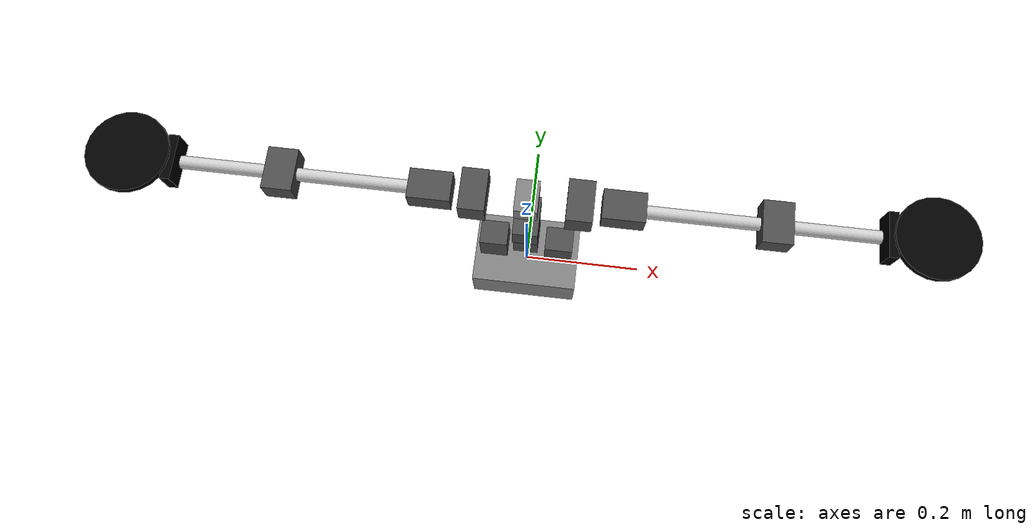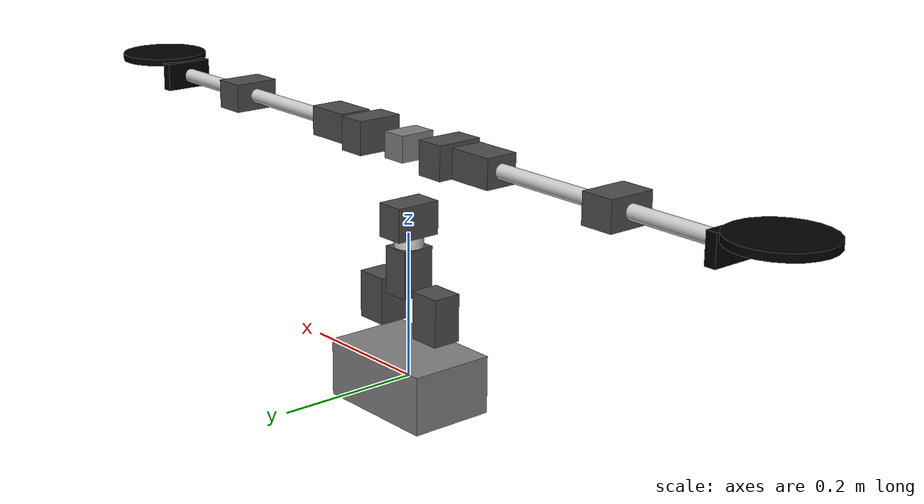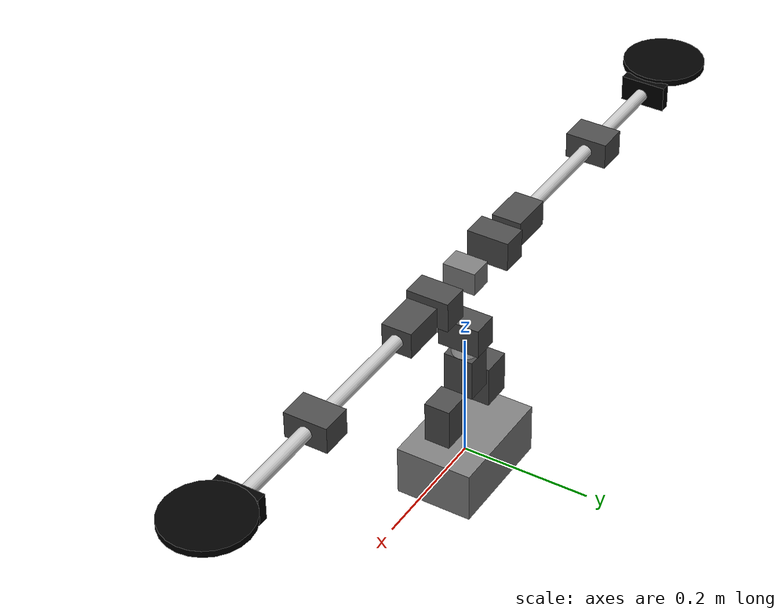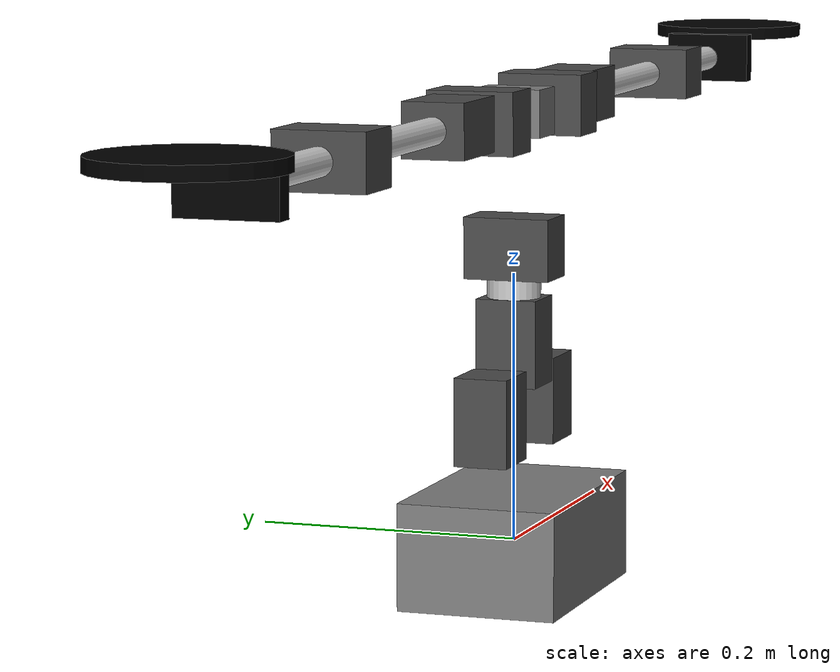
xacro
<?xml version="1.0" ?>
<robot xmlns:xacro="http://ros.org/wiki/xacro" name="tflow">

    <xacro:property name="dynamixel_mx28_x" value="0.0356"/>
    <xacro:property name="dynamixel_mx28_y" value="0.0355"/>
    <xacro:property name="dynamixel_mx28_z" value="0.0506"/>
    <xacro:property name="dynamixel_mx28_weight" value="0.072"/>

    <xacro:property name="dynamixel_mx64_x" value="0.0402"/>
    <xacro:property name="dynamixel_mx64_y" value="0.041"/>
    <xacro:property name="dynamixel_mx64_z" value="0.0611"/>
    <xacro:property name="dynamixel_mx64_weight" value="0.126"/>

    <xacro:property name="dynamixel_mx106_x" value="0.0402"/>
    <xacro:property name="dynamixel_mx106_y" value="0.046"/>
    <xacro:property name="dynamixel_mx106_z" value="0.0651"/>
    <xacro:property name="dynamixel_mx106_weight" value="0.153"/>

    <xacro:macro name="dynamixelmx28" params="roll pitch yaw x y z">
        <visual>
            <geometry>
                <box size="${dynamixel_mx28_x} ${dynamixel_mx28_y} ${dynamixel_mx28_z}"/>
            </geometry>
            <origin rpy="${roll} ${pitch} ${yaw}" xyz="${x} ${y} ${z}"/>
            <material name="silver">
                <color rgba="0.5 0.5 0.5 1"/>
            </material>
        </visual>
        <collision>
          <geometry>
            <box size="${dynamixel_mx28_x} ${dynamixel_mx28_y} ${dynamixel_mx28_z}"/>
          </geometry>
          <origin rpy="${roll} ${pitch} ${yaw}" xyz="${x} ${y} ${z}"/>
        </collision>
        <inertial>
            <mass value="${dynamixel_mx28_weight}"/>
            <inertia ixx="0.0" ixy="0.0" ixz="0.0" iyy="0.0" iyz="0.0" izz="0.0"/>
        </inertial>
    </xacro:macro>

    <xacro:macro name="dynamixelmx64" params="roll pitch yaw x y z">
        <visual>
            <geometry>
                <box size="${dynamixel_mx64_x} ${dynamixel_mx64_y} ${dynamixel_mx64_z}"/>
            </geometry>
            <origin rpy="${roll} ${pitch} ${yaw}" xyz="${x} ${y} ${z}"/>
            <material name="silver">
                <color rgba="0.5 0.5 0.5 1"/>
            </material>
        </visual>
        <collision>
          <geometry>
            <box size="${dynamixel_mx64_x} ${dynamixel_mx64_y} ${dynamixel_mx64_z}"/>
          </geometry>
          <origin rpy="${roll} ${pitch} ${yaw}" xyz="${x} ${y} ${z}"/>
        </collision>
        <inertial>
            <mass value="${dynamixel_mx64_weight}"/>
            <inertia ixx="0.0" ixy="0.0" ixz="0.0" iyy="0.0" iyz="0.0" izz="0.0"/>
        </inertial>
    </xacro:macro>

    <xacro:macro name="dynamixelmx106" params="roll pitch yaw x y z">
        <visual>
            <geometry>
                <box size="${dynamixel_mx106_x} ${dynamixel_mx106_y} ${dynamixel_mx106_z}"/>
            </geometry>
            <origin rpy="${roll} ${pitch} ${yaw}" xyz="${x} ${y} ${z}"/>
            <material name="silver">
                <color rgba="0.3 0.3 0.3 1"/>
            </material>
        </visual>
        <collision>
          <geometry>
            <box size="${dynamixel_mx106_x} ${dynamixel_mx106_y} ${dynamixel_mx106_z}"/>
          </geometry>
          <origin rpy="${roll} ${pitch} ${yaw}" xyz="${x} ${y} ${z}"/>
        </collision>
        <inertial>
            <mass value="${dynamixel_mx106_weight}"/>
            <inertia ixx="0.0" ixy="0.0" ixz="0.0" iyy="0.0" iyz="0.0" izz="0.0"/>
        </inertial>
    </xacro:macro>

    <xacro:macro name="link_cylinder" params="le r roll pitch yaw x y z">
        <visual>
            <geometry>
                <cylinder length="${le}" radius="${r}"/>
            </geometry>
            <origin rpy="${roll} ${pitch} ${yaw}" xyz="${x} ${y} ${z}"/>
            <material name="white">
                <color rgba="0.8 0.8 0.8 1"/>
            </material>
        </visual>
        <collision>
          <geometry>
            <cylinder length="${le}" radius="${r}"/>
          </geometry>
          <origin rpy="${roll} ${pitch} ${yaw}" xyz="${x} ${y} ${z}"/>
        </collision>
        <inertial>
            <mass value="${le*r}"/>
            <inertia ixx="0.0" ixy="0.0" ixz="0.0" iyy="0.0" iyz="0.0" izz="0.0"/>
        </inertial>
    </xacro:macro>

    <xacro:macro name="link_box" params="bx by bz roll pitch yaw x y z">
        <visual>
            <geometry>
                <box size="${bx} ${by} ${bz}"/>
            </geometry>
            <origin rpy="${roll} ${pitch} ${yaw}" xyz="${x} ${y} ${z}"/>
            <material name="black">
                <color rgba="0 0 0 1"/>
            </material>
        </visual>
        <collision>
          <geometry>
            <box size="${bx} ${by} ${bz}"/>
          </geometry>
          <origin rpy="${roll} ${pitch} ${yaw}" xyz="${x} ${y} ${z}"/>
        </collision>
        <inertial>
            <mass value="${bx*by*bz}"/>
            <inertia ixx="0.0" ixy="0.0" ixz="0.0" iyy="0.0" iyz="0.0" izz="0.0"/>
        </inertial>
    </xacro:macro>

    <xacro:macro name="telapak_tangan" params="le r roll pitch yaw x y z">
        <visual>
            <geometry>
                <cylinder length="${le}" radius="${r}"/>
            </geometry>
            <origin rpy="${roll} ${pitch} ${yaw}" xyz="${x} ${y} ${z}"/>
            <material name="black">
                <color rgba="0 0 0 1"/>
            </material>
        </visual>
        <collision>
          <geometry>
            <cylinder length="${le}" radius="${r}"/>
          </geometry>
          <origin rpy="${roll} ${pitch} ${yaw}" xyz="${x} ${y} ${z}"/>
        </collision>
        <inertial>
            <mass value="${le*r}"/>
            <inertia ixx="0.0" ixy="0.0" ixz="0.0" iyy="0.0" iyz="0.0" izz="0.0"/>
        </inertial>
    </xacro:macro>

    <link name="base_link">
        <visual>
            <geometry>
                <box size="0.18 0.12 0.08"/>
            </geometry>
            <origin rpy="0 0 0" xyz="0 0 0"/>
            <material name="silver">
                <color rgba="0.5 0.5 0.5 1"/>
            </material>
        </visual>
        <collision>
            <geometry>
                <box size="0.18 0.12 0.08"/>
            </geometry>
            <origin rpy="0 0 0" xyz="0 0 0"/>
            <material name="silver">
                <color rgba="0.5 0.5 0.5 1"/>
            </material>
        </collision>
        <inertial>
            <mass value="0.01"/>
            <inertia ixx="0.0" ixy="0.0" ixz="0.0" iyy="0.0" iyz="0.0" izz="0.0"/>
        </inertial>
    </link>

    <!-- PERUT -->
    <link name="servo_perut_roll_1">
        <xacro:dynamixelmx106 roll="0.0" pitch="0.0" yaw = "1.57" x="0" y="0" z="0"/>
    </link>

    <link name="servo_perut_roll_2">
        <xacro:dynamixelmx106 roll="0.0" pitch="0.0" yaw = "-1.57" x="0" y="0" z="0"/>
    </link>

    <link name="servo_perut_pitch">
        <xacro:dynamixelmx106 roll="0.0" pitch="0.0" yaw = "0" x="0" y="0" z="0"/>
    </link>

    <link name="link_perut_yaw">
        <xacro:link_cylinder le="0.04" r="0.02" roll="0.0" pitch="0.0" yaw ="0" x="0" y="0" z="0.03"/>
    </link>

    <link name="servo_perut_yaw">
        <xacro:dynamixelmx106 roll="-1.57" pitch="0.0" yaw = "0" x="0" y="0" z="0.02"/>
    </link>
    <!-- PERUT_END -->

    <!-- Kepala -->
    <link name="servo_kepala_yaw">
        <xacro:dynamixelmx28 roll="1.57" pitch="0.0" yaw = "0" x="0" y="0" z="0.0"/>
    </link>
    <!-- Kepala_END -->

    <!-- Tangan_Kanan -->
    <link name="servo_bahu_kanan_roll">
        <xacro:dynamixelmx106 roll="-1.57" pitch="0" yaw = "0" x="0" y="0" z="0"/>
    </link>

    <link name="servo_bahu_kanan_pitch">
        <xacro:dynamixelmx106 roll="0" pitch="1.57" yaw = "0" x="0" y="0" z="0"/>
    </link>

    <link name="link_siku_kanan">
        <xacro:link_cylinder le="0.195" r="0.01" roll="0.0" pitch="1.57" yaw ="0" x="${0.195/2}" y="0" z="0.0"/>
    </link>

    <link name="servo_siku_kanan_pitch">
        <xacro:dynamixelmx106 roll="0" pitch="1.57" yaw = "1.57" x="0" y="0" z="0"/>
    </link>

    <link name="link_lengan_kanan">
        <xacro:link_cylinder le="0.15" r="0.01" roll="0.0" pitch="1.57" yaw ="0" x="${-(0.16/2)}" y="0" z="0.0"/>
    </link>

    <link name="link_telapak_kanan">
        <xacro:link_box bx="0.015" by="0.07" bz="0.04" roll="0.0" pitch="0" yaw ="0" x="0" y="0" z="0.0"/>
    </link>

    <link name="telapak_tangan_kanan">
        <xacro:telapak_tangan le="0.01" r="${0.125/2}" roll="0.0" pitch="0" yaw ="0" x="0" y="0" z="0.0"/>
    </link>
    <!-- Tangan_Kanan_END -->

    <!-- Tangan_Kiri -->
    <link name="servo_bahu_kiri_roll">
        <xacro:dynamixelmx106 roll="1.57" pitch="0" yaw = "0" x="0" y="0" z="0"/>
    </link>

    <link name="servo_bahu_kiri_pitch">
        <xacro:dynamixelmx106 roll="0" pitch="-1.57" yaw = "0" x="0" y="0" z="0"/>
    </link>

    <link name="link_siku_kiri">
        <xacro:link_cylinder le="0.195" r="0.01" roll="0.0" pitch="-1.57" yaw ="0" x="${-(0.195/2)}" y="0" z="0.0"/>
    </link>

    <link name="servo_siku_kiri_pitch">
        <xacro:dynamixelmx106 roll="0" pitch="1.57" yaw = "1.57" x="0" y="0" z="0"/>
    </link>

    <link name="link_lengan_kiri">
        <xacro:link_cylinder le="0.15" r="0.01" roll="0.0" pitch="-1.57" yaw ="0" x="${(0.16/2)}" y="0" z="0.0"/>
    </link>

    <link name="link_telapak_kiri">
        <xacro:link_box bx="0.015" by="0.07" bz="0.04" roll="0.0" pitch="0" yaw ="0" x="0" y="0" z="0.0"/>
    </link>

    <link name="telapak_tangan_kiri">
        <xacro:telapak_tangan le="0.01" r="${0.125/2}" roll="0.0" pitch="0" yaw ="0" x="0" y="0" z="0.0"/>
    </link>
    <!-- Tangan_Kiri_END -->

    <!-- PERUT -->
    <joint name="joint_perut_roll" type="fixed">
        <parent link="base_link"/>
        <child link="servo_perut_roll_1"/>
        <origin rpy="0 0 0" xyz="0.055 0.0 0.1"/>
        <limit effort="300" velocity="0.1" lower="-1.57" upper="1.57"/>
        <dynamics damping="50" friction="1"/>
        <axis xyz="1 0 0" />
    </joint>

    <joint name="joint_perut_roll_2" type="fixed">
        <parent link="base_link"/>
        <child link="servo_perut_roll_2"/>
        <origin rpy="0 0 0" xyz="-0.055 0.0 0.1"/>
        <limit effort="300" velocity="0.1" lower="-1.57" upper="1.57"/>
        <dynamics damping="50" friction="1"/>
        <axis xyz="1 0 0" />
    </joint>

    <joint name="perut_roll" type="revolute">
        <parent link="servo_perut_roll_1"/>
        <child link="servo_perut_pitch"/>
        <origin rpy="0 0 0" xyz="-0.055 0.0 0.05"/>
        <limit effort="300" velocity="0.1" lower="-1.57" upper="1.57"/>
        <dynamics damping="50" friction="1"/>
        <axis xyz="1 0 0" />
    </joint>

    <joint name="perut_pitch" type="revolute">
        <parent link="servo_perut_pitch"/>
        <child link="link_perut_yaw"/>
        <origin rpy="0 0 0" xyz="0 0.0 0.0"/>
        <limit effort="300" velocity="0.1" lower="-1.57" upper="1.57"/>
        <dynamics damping="50" friction="1"/>
        <axis xyz="0 1 0" />
    </joint>

    <joint name="perut_yaw" type="revolute">
        <parent link="link_perut_yaw"/>
        <child link="servo_perut_yaw"/>
        <origin rpy="0 0 0" xyz="0.0 0.0 0.05"/>
        <limit effort="300" velocity="0.1" lower="-1.57" upper="1.57"/>
        <dynamics damping="50" friction="1"/>
        <axis xyz="0 0 1" />
    </joint>

    <!-- PERUT_END -->

    <!-- Kepala -->
    <joint name="perut_to_kepala" type="fixed">
        <parent link="servo_perut_yaw"/>
        <child link="servo_kepala_yaw"/>
        <origin rpy="0 0 0" xyz="0 0.0 0.12"/>
        <limit effort="300" velocity="0.1" lower="-1.57" upper="1.57"/>
        <dynamics damping="50" friction="1"/>
        <axis xyz="0 0 1" />
    </joint>

    <!-- Kepala_END -->

    <!-- Tangan_Kanan -->
    <joint name="joint_bahu_kanan_roll" type="fixed">
        <parent link="servo_kepala_yaw"/>
        <child link="servo_bahu_kanan_roll"/>
        <origin rpy="0 0 0" xyz="0.08 0.0 0.0"/>
        <limit effort="300" velocity="0.1" lower="-1.57" upper="1.57"/>
        <dynamics damping="50" friction="1"/>
        <axis xyz="0 0 1" />
    </joint>

    <joint name="bahu_kanan_roll" type="revolute">
        <parent link="servo_bahu_kanan_roll"/>
        <child link="servo_bahu_kanan_pitch"/>
        <origin rpy="0 0 0" xyz="0.065 0.0 0.0015"/>
        <limit effort="300" velocity="0.1" lower="-3.14" upper="3.14"/>
        <dynamics damping="50" friction="1"/>
        <axis xyz="1 0 0" />
    </joint>

    <joint name="bahu_kanan_yaw" type="revolute">
        <parent link="servo_bahu_kanan_pitch"/>
        <child link="link_siku_kanan"/>
        <origin rpy="0 0 0" xyz="0.03 0.0 0.00"/>
        <limit effort="300" velocity="0.1" lower="-2.00" upper="2.00"/>
        <dynamics damping="50" friction="1"/>
        <axis xyz="0 1 0" />
    </joint>

    <joint name="siku_kanan_yaw" type="revolute">
        <parent link="link_siku_kanan"/>
        <child link="servo_siku_kanan_pitch"/>
        <origin rpy="0 0 0" xyz="0.195 0.0 0.00"/>
        <limit effort="300" velocity="0.1" lower="-2.00" upper="2.00"/>
        <dynamics damping="50" friction="1"/>
        <axis xyz="0 0 1" />
    </joint>

    <joint name="joint_lengan_kanan_yaw" type="fixed">
        <parent link="servo_siku_kanan_pitch"/>
        <child link="link_lengan_kanan"/>
        <origin rpy="0 0 0" xyz="0.16 0.0 0.00"/>
        <limit effort="300" velocity="0.1" lower="-1.57" upper="1.57"/>
        <dynamics damping="50" friction="1"/>
        <axis xyz="0 0 1" />
    </joint>

    <joint name="joint_tangan_kanan" type="fixed">
        <parent link="link_lengan_kanan"/>
        <child link="link_telapak_kanan"/>
        <origin rpy="0 0 0" xyz="${0.015/2} 0.0 0.0"/>
        <limit effort="300" velocity="0.1" lower="-3.14" upper="3.14"/>
        <dynamics damping="50" friction="1"/>
    </joint>

    <joint name="tangan_kanan_EOF" type="fixed">
        <parent link="link_telapak_kanan"/>
        <child link="telapak_tangan_kanan"/>
        <origin rpy="0 0 0" xyz="${0.125/2} 0.0 0.02"/>
        <limit effort="300" velocity="0.1" lower="-3.14" upper="3.14"/>
        <dynamics damping="50" friction="1"/>
    </joint>
    <!-- Tangan_Kanan_END -->

    <!-- Tangan_Kiri -->
    <joint name="joint_bahu_kiri_yaw" type="fixed">
        <parent link="servo_kepala_yaw"/>
        <child link="servo_bahu_kiri_roll"/>
        <origin rpy="0 0 0" xyz="-0.08 0.0 0.0"/>
        <limit effort="300" velocity="0.1" lower="-1.57" upper="1.57"/>
        <dynamics damping="50" friction="1"/>
        <axis xyz="0 0 1" />
        </joint>

    <joint name="bahu_kiri_roll" type="revolute">
        <parent link="servo_bahu_kiri_roll"/>
        <child link="servo_bahu_kiri_pitch"/>
        <origin rpy="0 0 0" xyz="-0.065 0.0 0.0015"/>
        <limit effort="300" velocity="0.1" lower="-3.14" upper="3.14"/>
        <dynamics damping="50" friction="1"/>
        <axis xyz="1 0 0" />
    </joint>

    <joint name="bahu_kiri_yaw" type="revolute">
        <parent link="servo_bahu_kiri_pitch"/>
        <child link="link_siku_kiri"/>
        <origin rpy="0 0 0" xyz="-0.03 0.0 0.00"/>
        <limit effort="300" velocity="0.1" lower="-2.00" upper="2.00"/>
        <dynamics damping="50" friction="1"/>
        <axis xyz="0 1 0" />
    </joint>

    <joint name="siku_kiri_yaw" type="revolute">
        <parent link="link_siku_kiri"/>
        <child link="servo_siku_kiri_pitch"/>
        <origin rpy="0 0 0" xyz="-0.195 0.0 0.00"/>
        <limit effort="300" velocity="0.1" lower="-2.00" upper="2.00"/>
        <dynamics damping="50" friction="1"/>
        <axis xyz="0 0 1" />
    </joint>

    <joint name="joint_lengan_kiri_yaw" type="fixed">
        <parent link="servo_siku_kiri_pitch"/>
        <child link="link_lengan_kiri"/>
        <origin rpy="0 0 0" xyz="-0.16 0.0 0.00"/>
        <limit effort="300" velocity="0.1" lower="-1.57" upper="1.57"/>
        <dynamics damping="50" friction="1"/>
        <axis xyz="0 0 1" />
    </joint>

    <joint name="joint_tangan_kiri" type="fixed">
        <parent link="link_lengan_kiri"/>
        <child link="link_telapak_kiri"/>
        <origin rpy="0 0 0" xyz="${-(0.015/2)} 0.0 0.0"/>
        <limit effort="300" velocity="0.1" lower="-3.14" upper="3.14"/>
        <dynamics damping="50" friction="1"/>
    </joint>

    <joint name="tangan_kiri_EOF" type="fixed">
        <parent link="link_telapak_kiri"/>
        <child link="telapak_tangan_kiri"/>
        <origin rpy="0 0 0" xyz="${-(0.125/2)} 0.0 0.02"/>
        <limit effort="300" velocity="0.1" lower="-3.14" upper="3.14"/>
        <dynamics damping="50" friction="1"/>
    </joint>

    <!-- Tangan_Kiri_END -->

</robot>
